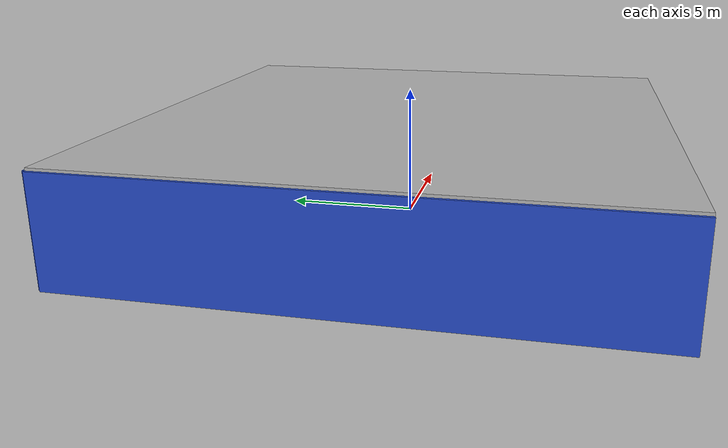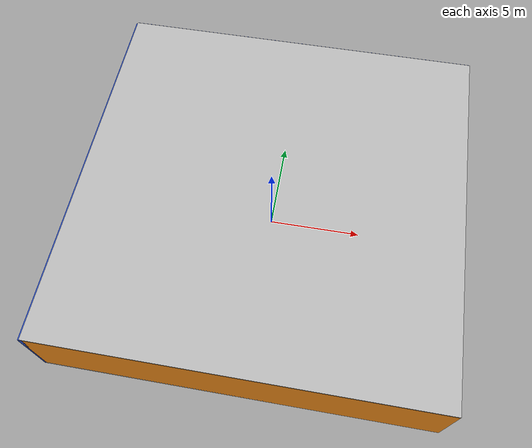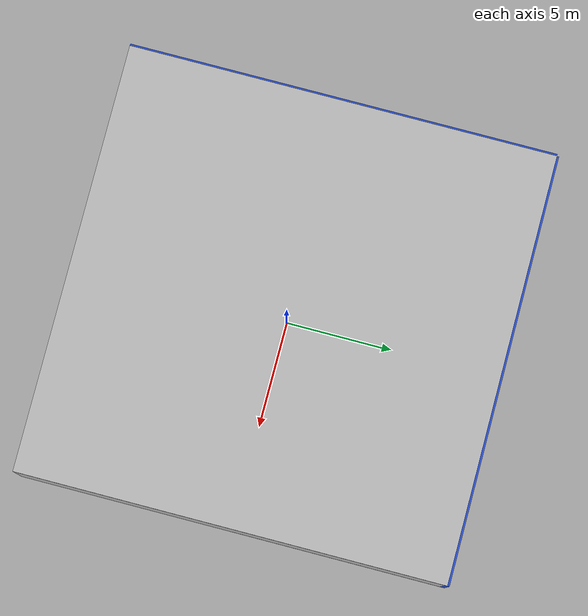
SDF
<sdf version="1.4">
 <world name="default">
  <physics type="ode">
   <max_step_size>0.001</max_step_size>
   <real_time_factor>1</real_time_factor>
   <real_time_update_rate>1000</real_time_update_rate>
   <gravity>0 0 -9.8</gravity>
  </physics>
  <scene><ambient>0.4 0.4 0.4 1</ambient><background>0.7 0.7 0.7 1</background><shadows>1</shadows></scene>
  <model name="Surrounding">
   <static>1</static>
   <link name="Ceiling">
    <collision name="Ceiling_Collision"><geometry><box><size>20 20 0.1</size></box></geometry></collision>
    <visual name="Ceiling_Visual">
     <geometry><box><size>20 20 0.1</size></box></geometry>
     <material>
      <script><uri>file://media/materials/scripts/gazebo.material</uri><name>Gazebo/PioneerBody</name></script>
     </material>
    </visual>
    <pose>0 0 4.05 0 0 0</pose>
   </link>
   <link name="Wall_South">
    <collision name="Wall_South_Collision">
     <geometry><box><size>20 0 4</size></box></geometry>
     <pose>0 0 2 0 -0 0</pose>
    </collision>
    <visual name="Wall_South_Visual">
     <pose>0 0 2 0 -0 0</pose>
     <geometry><box><size>20 0 4</size></box></geometry>
     <material>
      <script><uri>file://media/materials/scripts/gazebo.material</uri><name>Gazebo/Orange</name></script>
     </material>
    </visual>
    <velocity_decay><linear>0</linear><angular>0</angular></velocity_decay>
    <pose>0 -10 0 0 -0 0</pose>
   </link>
   <link name="Wall_East">
    <collision name="Wall_21_Collision">
     <geometry><box><size>20 0 4</size></box></geometry>
     <pose>0 0 2 0 -0 0</pose>
    </collision>
    <visual name="Wall_21_Visual">
     <pose>0 0 2 0 -0 0</pose>
     <geometry><box><size>20 0 4</size></box></geometry>
     <material>
      <script><uri>file://media/materials/scripts/gazebo.material</uri><name>Gazebo/CloudySky</name></script>
     </material>
    </visual>
    <velocity_decay><linear>0</linear><angular>0</angular></velocity_decay>
    <pose>10 0 0 0 -0 1.5708</pose>
   </link>
   <link name="Wall_North">
    <collision name="Wall_22_Collision">
     <geometry><box><size>20 0.2 4</size></box></geometry>
     <pose>0 0 2 0 -0 0</pose>
    </collision>
    <visual name="Wall_22_Visual">
     <pose>0 0 2 0 -0 0</pose>
     <geometry><box><size>20 0.2 4</size></box></geometry>
     <material>
      <script><uri>file://media/materials/scripts/gazebo.material</uri><name>Gazebo/BlueGlow</name></script>
     </material>
    </visual>
    <velocity_decay><linear>0</linear><angular>0</angular></velocity_decay>
    <pose>0 10 0 0 -0 0</pose>
   </link>
   <link name="Wall_West">
    <collision name="Wall_23_Collision">
     <geometry><box><size>20 0.2 4</size></box></geometry>
     <pose>0 0 2 0 -0 0</pose>
    </collision>
    <visual name="Wall_23_Visual">
     <pose>0 0 2 0 -0 0</pose>
     <geometry><box><size>20 0.2 4</size></box></geometry>
     <material>
      <script><uri>file://media/materials/scripts/gazebo.material</uri><name>Gazebo/BlueGlow</name></script>
     </material>
    </visual>
    <velocity_decay><linear>0</linear><angular>0</angular></velocity_decay>
    <pose>-10 0 0 0 0 -1.5708</pose>
   </link>
   <link name="Ground_link">
    <collision name="collision">
     <pose>0 0 .05 0 -0 0</pose>
     <geometry><box><size>20 20 0.1</size></box></geometry>
    </collision>
    <visual name="visual">
     <pose>0 0 .05 0 -0 0</pose>
     <geometry><box><size>20 20 0.1</size></box></geometry>
     <material>
      <script><uri>file://media/materials/scripts/gazebo.material</uri><name>Gazebo/White</name></script>
     </material>
    </visual>
   </link>
   <static>1</static>
  </model>
  <spherical_coordinates>
   <surface_model>EARTH_WGS84</surface_model>
   <latitude_deg>0</latitude_deg>
   <longitude_deg>0</longitude_deg>
   <elevation>0</elevation>
   <heading_deg>0</heading_deg>
  </spherical_coordinates>
  <light name="lightball_0" type="diffuse">
   <diffuse>0.8 0.8 0.8 1</diffuse>
   <specular>0.2 0.2 0.2 1</specular>
   <attenuation>
    <range>100</range>
    <constant>0.7</constant>
    <linear>0.01</linear>
    <quadratic>0.001</quadratic>
   </attenuation>
   <direction>-0.5 0.1 -0.9</direction>
   <pose>8.74968152238 2.71170951232 0.936320987086 0 0 0</pose>
  </light>
  <light name="lightball_1" type="diffuse">
   <diffuse>0.8 0.8 0.8 1</diffuse>
   <specular>0.2 0.2 0.2 1</specular>
   <attenuation>
    <range>100</range>
    <constant>0.7</constant>
    <linear>0.01</linear>
    <quadratic>0.001</quadratic>
   </attenuation>
   <direction>-0.5 0.1 -0.9</direction>
   <pose>8.00565532727 0.725611836523 1.45234879474 0 0 0</pose>
  </light>
  <light name="lightball_2" type="diffuse">
   <diffuse>0.8 0.8 0.8 1</diffuse>
   <specular>0.2 0.2 0.2 1</specular>
   <attenuation>
    <range>100</range>
    <constant>0.7</constant>
    <linear>0.01</linear>
    <quadratic>0.001</quadratic>
   </attenuation>
   <direction>-0.5 0.1 -0.9</direction>
   <pose>4.49437270776 2.78298458015 1.14800998864 0 0 0</pose>
  </light>
  <light name="lightball_3" type="diffuse">
   <diffuse>0.8 0.8 0.8 1</diffuse>
   <specular>0.2 0.2 0.2 1</specular>
   <attenuation>
    <range>100</range>
    <constant>0.7</constant>
    <linear>0.01</linear>
    <quadratic>0.001</quadratic>
   </attenuation>
   <direction>-0.5 0.1 -0.9</direction>
   <pose>3.13647870327 1.18769029832 3.56857874805 0 0 0</pose>
  </light>
  <light name="lightball_4" type="diffuse">
   <diffuse>0.8 0.8 0.8 1</diffuse>
   <specular>0.2 0.2 0.2 1</specular>
   <attenuation>
    <range>100</range>
    <constant>0.7</constant>
    <linear>0.01</linear>
    <quadratic>0.001</quadratic>
   </attenuation>
   <direction>-0.5 0.1 -0.9</direction>
   <pose>-7.9873288426 1.74034564253 3.81594960506 0 0 0</pose>
  </light>
  <light name="lightball_5" type="diffuse">
   <diffuse>0.8 0.8 0.8 1</diffuse>
   <specular>0.2 0.2 0.2 1</specular>
   <attenuation>
    <range>100</range>
    <constant>0.7</constant>
    <linear>0.01</linear>
    <quadratic>0.001</quadratic>
   </attenuation>
   <direction>-0.5 0.1 -0.9</direction>
   <pose>-6.47312733096 8.85138884368 1.60910572089 0 0 0</pose>
  </light>
  <light name="lightball_6" type="diffuse">
   <diffuse>0.8 0.8 0.8 1</diffuse>
   <specular>0.2 0.2 0.2 1</specular>
   <attenuation>
    <range>100</range>
    <constant>0.7</constant>
    <linear>0.01</linear>
    <quadratic>0.001</quadratic>
   </attenuation>
   <direction>-0.5 0.1 -0.9</direction>
   <pose>-9.27976813113 -4.54487458065 2.41818068957 0 0 0</pose>
  </light>
  <light name="lightball_7" type="diffuse">
   <diffuse>0.8 0.8 0.8 1</diffuse>
   <specular>0.2 0.2 0.2 1</specular>
   <attenuation>
    <range>100</range>
    <constant>0.7</constant>
    <linear>0.01</linear>
    <quadratic>0.001</quadratic>
   </attenuation>
   <direction>-0.5 0.1 -0.9</direction>
   <pose>2.55710493144 -8.9895994219 3.01036998746 0 0 0</pose>
  </light>
  <light name="lightball_8" type="diffuse">
   <diffuse>0.8 0.8 0.8 1</diffuse>
   <specular>0.2 0.2 0.2 1</specular>
   <attenuation>
    <range>100</range>
    <constant>0.7</constant>
    <linear>0.01</linear>
    <quadratic>0.001</quadratic>
   </attenuation>
   <direction>-0.5 0.1 -0.9</direction>
   <pose>-2.13304982894 -6.53992004477 0.775682966552 0 0 0</pose>
  </light>
  <light name="lightball_9" type="diffuse">
   <diffuse>0.8 0.8 0.8 1</diffuse>
   <specular>0.2 0.2 0.2 1</specular>
   <attenuation>
    <range>100</range>
    <constant>0.7</constant>
    <linear>0.01</linear>
    <quadratic>0.001</quadratic>
   </attenuation>
   <direction>-0.5 0.1 -0.9</direction>
   <pose>2.47021294166 3.40018459616 2.53882367856 0 0 0</pose>
  </light>
  <light name="lightball_10" type="diffuse">
   <diffuse>0.8 0.8 0.8 1</diffuse>
   <specular>0.2 0.2 0.2 1</specular>
   <attenuation>
    <range>100</range>
    <constant>0.7</constant>
    <linear>0.01</linear>
    <quadratic>0.001</quadratic>
   </attenuation>
   <direction>-0.5 0.1 -0.9</direction>
   <pose>-5.2027855918 -5.83354963273 2.06240442229 0 0 0</pose>
  </light>
  <include><uri>model://table</uri><pose>-3.80517730006 -8.0354341324 0 0 0 2.77243694934</pose></include>
  <include>
   <uri>model://construction_cone</uri>
   <pose>-3.77779160718 -4.96332708041 0 0 0 2.90108736753</pose>
  </include>
  <include><uri>model://table</uri><pose>-3.39701381682 4.42243614953 0 0 0 0.225288011225</pose></include>
  <include>
   <uri>model://textured_shapes</uri>
   <pose>-2.69411437896 -3.57354735387 0 0 0 0.759766540356</pose>
  </include>
  <include><uri>model://cabinet</uri><pose>0.929333022251 7.40499478443 0 0 0 1.30286503503</pose></include>
  <include><uri>model://table</uri><pose>4.92710924768 -6.68473358941 0 0 0 1.52333002377</pose></include>
  <include><uri>model://cabinet</uri><pose>3.98440582056 -4.01055323756 0 0 0 3.05939862644</pose></include>
 </world>
</sdf>

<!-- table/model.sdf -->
<sdf version="1.5">
  <model name="table">
    <static>true</static>
    <link name="link">
      <collision name="surface">
        <pose>0 0 1.0 0 0 0</pose>
        <geometry>
          <box>
            <size>1.5 0.8 0.03</size>
          </box>
        </geometry>
        <surface>
          <friction>
            <ode>
              <mu>0.6</mu>
              <mu2>0.6</mu2>
            </ode>
          </friction>
        </surface>
      </collision>
      <visual name="visual1">
        <pose>0 0 1.0 0 0 0</pose>
        <geometry>
          <box>
            <size>1.5 0.8 0.03</size>
          </box>
        </geometry>
        <material>
          <script>
            <uri>model://media/materials/scripts/gazebo.material</uri>
            <name>Gazebo/Wood</name>
          </script>
        </material>
      </visual>
      <collision name="front_left_leg">
        <pose>0.68 0.38 0.5 0 0 0</pose>
        <geometry>
          <cylinder>
            <radius>0.02</radius>
            <length>1.0</length>
          </cylinder>
        </geometry>
      </collision>
      <visual name="front_left_leg">
        <pose>0.68 0.38 0.5 0 0 0</pose>
        <geometry>
          <cylinder>
            <radius>0.02</radius>
            <length>1.0</length>
          </cylinder>
        </geometry>
        <material>
          <script>
            <uri>model://media/materials/scripts/gazebo.material</uri>
            <name>Gazebo/Grey</name>
          </script>
        </material>
      </visual>
      <collision name="front_right_leg">
        <pose>0.68 -0.38 0.5 0 0 0</pose>
        <geometry>
          <cylinder>
            <radius>0.02</radius>
            <length>1.0</length>
          </cylinder>
        </geometry>
      </collision>
      <visual name="front_right_leg">
        <pose>0.68 -0.38 0.5 0 0 0</pose>
        <geometry>
          <cylinder>
            <radius>0.02</radius>
            <length>1.0</length>
          </cylinder>
        </geometry>
        <material>
          <script>
            <uri>model://media/materials/scripts/gazebo.material</uri>
            <name>Gazebo/Grey</name>
          </script>
        </material>
      </visual>
      <collision name="back_right_leg">
        <pose>-0.68 -0.38 0.5 0 0 0</pose>
        <geometry>
          <cylinder>
            <radius>0.02</radius>
            <length>1.0</length>
          </cylinder>
        </geometry>
      </collision>
      <visual name="back_right_leg">
        <pose>-0.68 -0.38 0.5 0 0 0</pose>
        <geometry>
          <cylinder>
            <radius>0.02</radius>
            <length>1.0</length>
          </cylinder>
        </geometry>
        <material>
          <script>
            <uri>model://media/materials/scripts/gazebo.material</uri>
            <name>Gazebo/Grey</name>
          </script>
        </material>
      </visual>
      <collision name="back_left_leg">
        <pose>-0.68 0.38 0.5 0 0 0</pose>
        <geometry>
          <cylinder>
            <radius>0.02</radius>
            <length>1.0</length>
          </cylinder>
        </geometry>
      </collision>
      <visual name="back_left_leg">
        <pose>-0.68 0.38 0.5 0 0 0</pose>
        <geometry>
          <cylinder>
            <radius>0.02</radius>
            <length>1.0</length>
          </cylinder>
        </geometry>
        <material>
          <script>
            <uri>model://media/materials/scripts/gazebo.material</uri>
            <name>Gazebo/Grey</name>
          </script>
        </material>
      </visual>
    </link>
  </model>
</sdf>

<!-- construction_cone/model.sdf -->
<sdf version="1.5">
  <model name="Construction Cone">
    <link name="link">
      <collision name="collision">
        <geometry>
          <mesh>
            <scale>10 10 10</scale>
            <uri>file://isr-testbed/construction_cone/meshes/construction_cone.dae</uri>
          </mesh>
        </geometry>
      </collision>
      <visual name="visual">
        <geometry>
          <mesh>
            <scale>10 10 10</scale>
            <uri>file://isr-testbed/construction_cone/meshes/construction_cone.dae</uri>
          </mesh>
        </geometry>
      </visual>
    </link>
  </model>
</sdf>

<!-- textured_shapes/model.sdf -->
<sdf version="1.6">
  <model name="textured_shapes">
    <pose>0 0 0.5 0 0 0</pose>
    <link name="box">
      <pose>0 -1.5 0 0 0 0</pose>
      <collision name="collision">
        <geometry>
          <box>
            <size>1 1 1</size>
          </box>
        </geometry>
      </collision>
      <visual name="visual">
        <geometry>
          <box>
            <size>1 1 1</size>
          </box>
        </geometry>
        <material>
          <script>
            <uri>model://../model_source/models/textured_shapes/materials/scripts</uri>
            <uri>model://../model_source/models/textured_shapes/materials/textures</uri>
            <name>TexturedShape/Squares</name>
          </script>
        </material>
      </visual>
    </link>
    <link name="sphere">
      <collision name="collision">
        <geometry>
          <sphere>
            <radius>0.5</radius>
          </sphere>
        </geometry>
      </collision>
      <visual name="visual">
        <geometry>
          <sphere>
            <radius>0.5</radius>
          </sphere>
        </geometry>
        <material>
          <script>
            <uri>model://../model_source/models/textured_shapes/materials/scripts</uri>
            <uri>model://../model_source/models/textured_shapes/materials/textures</uri>
            <name>TexturedShape/Squares</name>
          </script>
        </material>
      </visual>
    </link>
    <link name="cylinder">
      <pose>0 1.5 0 0 0 0</pose>
      <collision name="collision">
        <geometry>
          <cylinder>
            <radius>0.5</radius>
            <length>1</length>
          </cylinder>
        </geometry>
      </collision>
      <visual name="visual">
        <geometry>
          <cylinder>
            <radius>0.5</radius>
            <length>1</length>
          </cylinder>
        </geometry>
        <material>
          <script>
            <uri>model://../model_source/models/textured_shapes/materials/scripts</uri>
            <uri>model://../model_source/models/textured_shapes/materials/textures</uri>
            <name>TexturedShape/Squares</name>
          </script>
        </material>
      </visual>
    </link>
  </model>
</sdf>

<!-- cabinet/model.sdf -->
<sdf version="1.5">
  <model name="cabinet">
    <static>true</static>
    <link name="cabinet_bottom_plate">
      <inertial>
        <pose>0 0 -1 0 0 0</pose>
        <inertia>
          <ixx>2.050000</ixx>
          <ixy>0</ixy>
          <ixz>0</ixz>
          <iyy>2.050000</iyy>
          <iyz>0</iyz>
          <izz>2.050000</izz>
        </inertia>
        <mass>25.000000</mass>
      </inertial>
      <collision name="cabinet_bottom_plate_geom">
        <pose>0 0 0.010000 0 0 0</pose>
        <geometry>
          <box>
            <size>0.450000 0.450000 0.020000</size>
          </box>
        </geometry>
      </collision>
      <visual name="cabinet_bottom_plate_geom_visual">
        <pose>0 0 0.010000 0 0 0</pose>
        <geometry>
          <box>
            <size>0.450000 0.450000 0.020000</size>
          </box>
        </geometry>
        <material>
          <script>
            <uri>model://media/materials/scripts/gazebo.material</uri>
            <name>Gazebo/Wood</name>
          </script>
        </material>
      </visual>
      <collision name="cabinet_bottom_plate_geom_cabinet_back_plate">
        <pose>0.235000 0 0.510000 0 0 0</pose>
        <geometry>
          <box>
            <size>0.020000 0.450000 1.020000</size>
          </box>
        </geometry>
      </collision>
      <visual name="cabinet_bottom_plate_geom_cabinet_back_plate_visual">
        <pose>0.235000 0 0.510000 0 0 0</pose>
        <geometry>
          <box>
            <size>0.020000 0.450000 1.020000</size>
          </box>
        </geometry>
        <material>
          <script>
            <uri>model://media/materials/scripts/gazebo.material</uri>
            <name>Gazebo/Wood</name>
          </script>
        </material>
      </visual>
      <collision name="cabinet_bottom_plate_geom_cabinet_left_plate">
        <pose>0 0.235000 0.510000 0 0 0</pose>
        <geometry>
          <box>
            <size>0.450000 0.020000 1.020000</size>
          </box>
        </geometry>
      </collision>
      <visual name="cabinet_bottom_plate_geom_cabinet_left_plate_visual">
        <pose>0 0.235000 0.510000 0 0 0</pose>
        <geometry>
          <box>
            <size>0.450000 0.020000 1.020000</size>
          </box>
        </geometry>
        <material>
          <script>
            <uri>model://media/materials/scripts/gazebo.material</uri>
            <name>Gazebo/Wood</name>
          </script>
        </material>
      </visual>
      <collision name="cabinet_bottom_plate_geom_cabinet_middle_plate">
        <pose>0 0 0.510000 0 0 0</pose>
        <geometry>
          <box>
            <size>0.450000 0.450000 0.020000</size>
          </box>
        </geometry>
      </collision>
      <visual name="cabinet_bottom_plate_geom_cabinet_middle_plate_visual">
        <pose>0 0 0.510000 0 0 0</pose>
        <geometry>
          <box>
            <size>0.450000 0.450000 0.020000</size>
          </box>
        </geometry>
        <material>
          <script>
            <uri>model://media/materials/scripts/gazebo.material</uri>
            <name>Gazebo/Wood</name>
          </script>
        </material>
      </visual>
      <collision name="cabinet_bottom_plate_geom_cabinet_right_plate">
        <pose>0 -0.235000 0.510000 0 0 0</pose>
        <geometry>
          <box>
            <size>0.450000 0.020000 1.020000</size>
          </box>
        </geometry>
      </collision>
      <visual name="cabinet_bottom_plate_geom_cabinet_right_plate_visual">
        <pose>0 -0.235000 0.510000 0 0 0</pose>
        <geometry>
          <box>
            <size>0.450000 0.020000 1.020000</size>
          </box>
        </geometry>
        <material>
          <script>
            <uri>model://media/materials/scripts/gazebo.material</uri>
            <name>Gazebo/Wood</name>
          </script>
        </material>
      </visual>
      <collision name="cabinet_bottom_plate_geom_cabinet_top_plate">
        <pose>0 0 1.010000 0 0 0</pose>
        <geometry>
          <box>
            <size>0.450000 0.450000 0.020000</size>
          </box>
        </geometry>
      </collision>
      <visual name="cabinet_bottom_plate_geom_cabinet_top_plate_visual">
        <pose>0 0 1.010000 0 0 0</pose>
        <geometry>
          <box>
            <size>0.450000 0.450000 0.020000</size>
          </box>
        </geometry>
        <material>
          <script>
            <uri>model://media/materials/scripts/gazebo.material</uri>
            <name>Gazebo/Wood</name>
          </script>
        </material>
      </visual>
    </link>
  </model>
</sdf>
